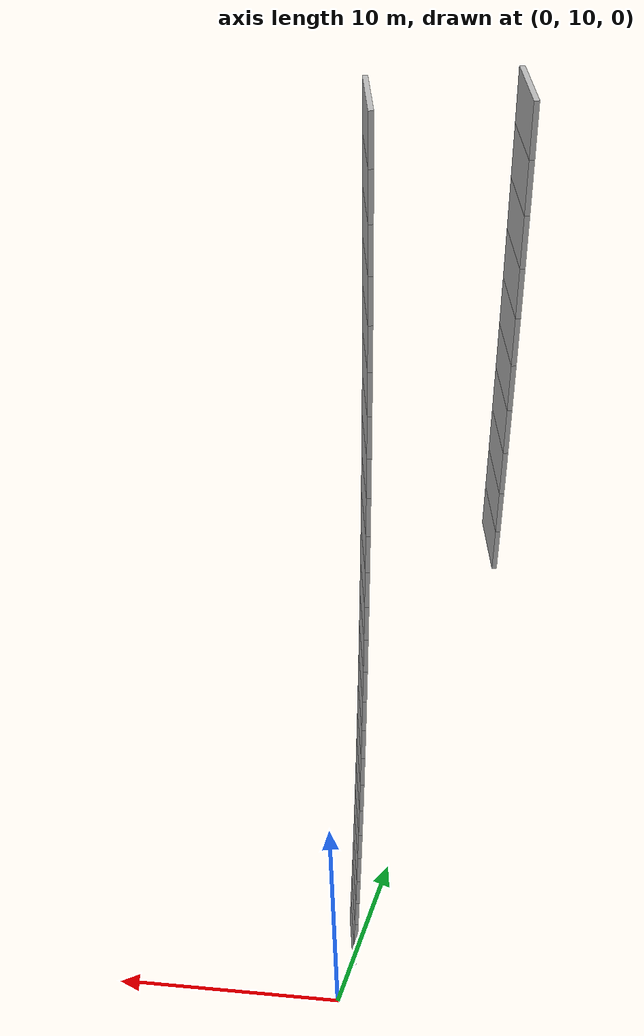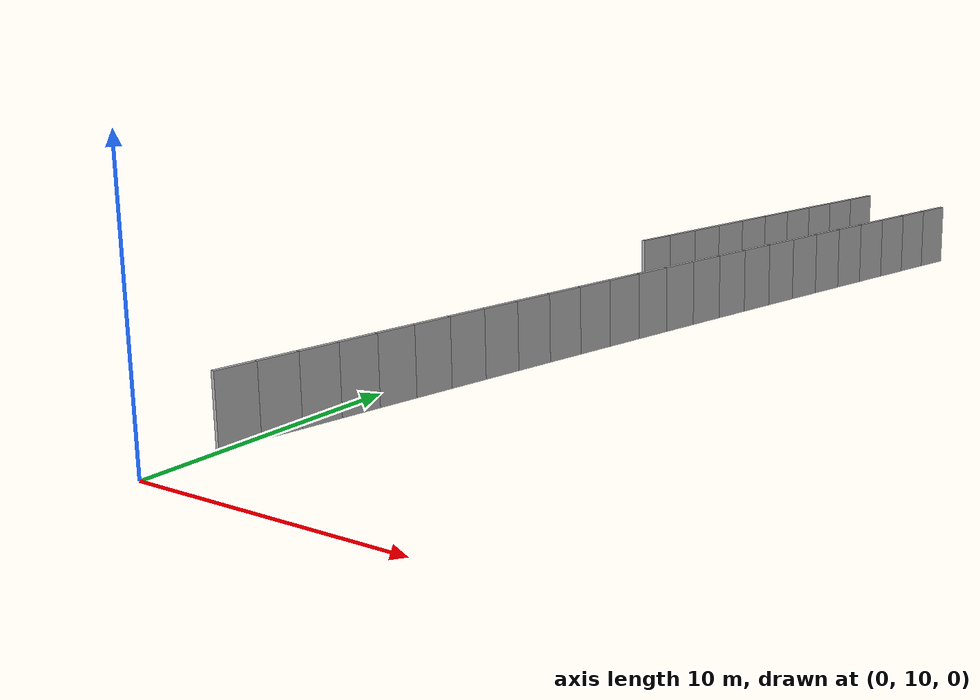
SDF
<?xml version="1.0" ?>
<sdf version="1.6">
  <model name="sps_0329">
    <pose frame="">0 0 0 0 -0 0</pose>
    <static>1</static>
    <self_collide>0</self_collide>
    <allow_auto_disable>0</allow_auto_disable>
    <link name="Wall5069">
      <kinematic>0</kinematic>
      <gravity>1</gravity>
      <self_collide>0</self_collide>
      <collision name="collision">
        <geometry>
          <box>
            <size>1.4965 0.15 2.5</size>
          </box>
        </geometry>
        <pose frame="">0 0 0 0 -0 0</pose>
      </collision>
      <visual name="visual">
        <geometry>
          <box>
            <size>1.4965 0.15 2.5</size>
          </box>
        </geometry>
        <pose frame="">0 0 0 0 -0 0</pose>
        <cast_shadows>1</cast_shadows>
        <transparency>0.0</transparency>
      </visual>
      <pose frame="">7.18984 48.9115 1.25 0 0 -1.79093</pose>
    </link>
    <link name="Wall5070">
      <kinematic>0</kinematic>
      <gravity>1</gravity>
      <self_collide>0</self_collide>
      <collision name="collision">
        <geometry>
          <box>
            <size>1.49658 0.15 2.5</size>
          </box>
        </geometry>
        <pose frame="">0 0 0 0 -0 0</pose>
      </collision>
      <visual name="visual">
        <geometry>
          <box>
            <size>1.49658 0.15 2.5</size>
          </box>
        </geometry>
        <pose frame="">0 0 0 0 -0 0</pose>
        <cast_shadows>1</cast_shadows>
        <transparency>0.0</transparency>
      </visual>
      <pose frame="">6.86425 47.4508 1.25 0 0 -1.78929</pose>
    </link>
    <link name="Wall5071">
      <kinematic>0</kinematic>
      <gravity>1</gravity>
      <self_collide>0</self_collide>
      <collision name="collision">
        <geometry>
          <box>
            <size>1.49648 0.15 2.5</size>
          </box>
        </geometry>
        <pose frame="">0 0 0 0 -0 0</pose>
      </collision>
      <visual name="visual">
        <geometry>
          <box>
            <size>1.49648 0.15 2.5</size>
          </box>
        </geometry>
        <pose frame="">0 0 0 0 -0 0</pose>
        <cast_shadows>1</cast_shadows>
        <transparency>0.0</transparency>
      </visual>
      <pose frame="">6.54104 45.9896 1.25 0 0 -1.78768</pose>
    </link>
    <link name="Wall5072">
      <kinematic>0</kinematic>
      <gravity>1</gravity>
      <self_collide>0</self_collide>
      <collision name="collision">
        <geometry>
          <box>
            <size>1.49654 0.15 2.5</size>
          </box>
        </geometry>
        <pose frame="">0 0 0 0 -0 0</pose>
      </collision>
      <visual name="visual">
        <geometry>
          <box>
            <size>1.49654 0.15 2.5</size>
          </box>
        </geometry>
        <pose frame="">0 0 0 0 -0 0</pose>
        <cast_shadows>1</cast_shadows>
        <transparency>0.0</transparency>
      </visual>
      <pose frame="">6.22015 44.5279 1.25 0 0 -1.78613</pose>
    </link>
    <link name="Wall5073">
      <kinematic>0</kinematic>
      <gravity>1</gravity>
      <self_collide>0</self_collide>
      <collision name="collision">
        <geometry>
          <box>
            <size>1.4965 0.15 2.5</size>
          </box>
        </geometry>
        <pose frame="">0 0 0 0 -0 0</pose>
      </collision>
      <visual name="visual">
        <geometry>
          <box>
            <size>1.4965 0.15 2.5</size>
          </box>
        </geometry>
        <pose frame="">0 0 0 0 -0 0</pose>
        <cast_shadows>1</cast_shadows>
        <transparency>0.0</transparency>
      </visual>
      <pose frame="">5.90145 43.0657 1.25 0 0 -1.78467</pose>
    </link>
    <link name="Wall5074">
      <kinematic>0</kinematic>
      <gravity>1</gravity>
      <self_collide>0</self_collide>
      <collision name="collision">
        <geometry>
          <box>
            <size>1.49654 0.15 2.5</size>
          </box>
        </geometry>
        <pose frame="">0 0 0 0 -0 0</pose>
      </collision>
      <visual name="visual">
        <geometry>
          <box>
            <size>1.49654 0.15 2.5</size>
          </box>
        </geometry>
        <pose frame="">0 0 0 0 -0 0</pose>
        <cast_shadows>1</cast_shadows>
        <transparency>0.0</transparency>
      </visual>
      <pose frame="">5.58514 41.603 1.25 0 0 -1.78287</pose>
    </link>
    <link name="Wall5075">
      <kinematic>0</kinematic>
      <gravity>1</gravity>
      <self_collide>0</self_collide>
      <collision name="collision">
        <geometry>
          <box>
            <size>1.49639 0.15 2.5</size>
          </box>
        </geometry>
        <pose frame="">0 0 0 0 -0 0</pose>
      </collision>
      <visual name="visual">
        <geometry>
          <box>
            <size>1.49639 0.15 2.5</size>
          </box>
        </geometry>
        <pose frame="">0 0 0 0 -0 0</pose>
        <cast_shadows>1</cast_shadows>
        <transparency>0.0</transparency>
      </visual>
      <pose frame="">5.27135 40.1398 1.25 0 0 -1.78122</pose>
    </link>
    <link name="Wall5076">
      <kinematic>0</kinematic>
      <gravity>1</gravity>
      <self_collide>0</self_collide>
      <collision name="collision">
        <geometry>
          <box>
            <size>1.49654 0.15 2.5</size>
          </box>
        </geometry>
        <pose frame="">0 0 0 0 -0 0</pose>
      </collision>
      <visual name="visual">
        <geometry>
          <box>
            <size>1.49654 0.15 2.5</size>
          </box>
        </geometry>
        <pose frame="">0 0 0 0 -0 0</pose>
        <cast_shadows>1</cast_shadows>
        <transparency>0.0</transparency>
      </visual>
      <pose frame="">4.95986 38.6761 1.25 0 0 -1.77974</pose>
    </link>
    <link name="Wall5077">
      <kinematic>0</kinematic>
      <gravity>1</gravity>
      <self_collide>0</self_collide>
      <collision name="collision">
        <geometry>
          <box>
            <size>1.49649 0.15 2.5</size>
          </box>
        </geometry>
        <pose frame="">0 0 0 0 -0 0</pose>
      </collision>
      <visual name="visual">
        <geometry>
          <box>
            <size>1.49649 0.15 2.5</size>
          </box>
        </geometry>
        <pose frame="">0 0 0 0 -0 0</pose>
        <cast_shadows>1</cast_shadows>
        <transparency>0.0</transparency>
      </visual>
      <pose frame="">4.65057 37.2119 1.25 0 0 -1.77821</pose>
    </link>
    <link name="Wall5078">
      <kinematic>0</kinematic>
      <gravity>1</gravity>
      <self_collide>0</self_collide>
      <collision name="collision">
        <geometry>
          <box>
            <size>1.49637 0.15 2.5</size>
          </box>
        </geometry>
        <pose frame="">0 0 0 0 -0 0</pose>
      </collision>
      <visual name="visual">
        <geometry>
          <box>
            <size>1.49637 0.15 2.5</size>
          </box>
        </geometry>
        <pose frame="">0 0 0 0 -0 0</pose>
        <cast_shadows>1</cast_shadows>
        <transparency>0.0</transparency>
      </visual>
      <pose frame="">4.34356 35.7473 1.25 0 0 -1.77664</pose>
    </link>
    <link name="Wall5079">
      <kinematic>0</kinematic>
      <gravity>1</gravity>
      <self_collide>0</self_collide>
      <collision name="collision">
        <geometry>
          <box>
            <size>1.49675 0.15 2.5</size>
          </box>
        </geometry>
        <pose frame="">0 0 0 0 -0 0</pose>
      </collision>
      <visual name="visual">
        <geometry>
          <box>
            <size>1.49675 0.15 2.5</size>
          </box>
        </geometry>
        <pose frame="">0 0 0 0 -0 0</pose>
        <cast_shadows>1</cast_shadows>
        <transparency>0.0</transparency>
      </visual>
      <pose frame="">4.03884 34.2821 1.25 0 0 -1.77505</pose>
    </link>
    <link name="Wall5080">
      <kinematic>0</kinematic>
      <gravity>1</gravity>
      <self_collide>0</self_collide>
      <collision name="collision">
        <geometry>
          <box>
            <size>1.49639 0.15 2.5</size>
          </box>
        </geometry>
        <pose frame="">0 0 0 0 -0 0</pose>
      </collision>
      <visual name="visual">
        <geometry>
          <box>
            <size>1.49639 0.15 2.5</size>
          </box>
        </geometry>
        <pose frame="">0 0 0 0 -0 0</pose>
        <cast_shadows>1</cast_shadows>
        <transparency>0.0</transparency>
      </visual>
      <pose frame="">3.73644 32.8164 1.25 0 0 -1.77347</pose>
    </link>
    <link name="Wall5081">
      <kinematic>0</kinematic>
      <gravity>1</gravity>
      <self_collide>0</self_collide>
      <collision name="collision">
        <geometry>
          <box>
            <size>1.49656 0.15 2.5</size>
          </box>
        </geometry>
        <pose frame="">0 0 0 0 -0 0</pose>
      </collision>
      <visual name="visual">
        <geometry>
          <box>
            <size>1.49656 0.15 2.5</size>
          </box>
        </geometry>
        <pose frame="">0 0 0 0 -0 0</pose>
        <cast_shadows>1</cast_shadows>
        <transparency>0.0</transparency>
      </visual>
      <pose frame="">3.43645 31.3503 1.25 0 0 -1.77178</pose>
    </link>
    <link name="Wall5082">
      <kinematic>0</kinematic>
      <gravity>1</gravity>
      <self_collide>0</self_collide>
      <collision name="collision">
        <geometry>
          <box>
            <size>1.49649 0.15 2.5</size>
          </box>
        </geometry>
        <pose frame="">0 0 0 0 -0 0</pose>
      </collision>
      <visual name="visual">
        <geometry>
          <box>
            <size>1.49649 0.15 2.5</size>
          </box>
        </geometry>
        <pose frame="">0 0 0 0 -0 0</pose>
        <cast_shadows>1</cast_shadows>
        <transparency>0.0</transparency>
      </visual>
      <pose frame="">3.13876 29.8837 1.25 0 0 -1.77034</pose>
    </link>
    <link name="Wall5083">
      <kinematic>0</kinematic>
      <gravity>1</gravity>
      <self_collide>0</self_collide>
      <collision name="collision">
        <geometry>
          <box>
            <size>1.49661 0.15 2.5</size>
          </box>
        </geometry>
        <pose frame="">0 0 0 0 -0 0</pose>
      </collision>
      <visual name="visual">
        <geometry>
          <box>
            <size>1.49661 0.15 2.5</size>
          </box>
        </geometry>
        <pose frame="">0 0 0 0 -0 0</pose>
        <cast_shadows>1</cast_shadows>
        <transparency>0.0</transparency>
      </visual>
      <pose frame="">2.84334 28.4166 1.25 0 0 -1.76866</pose>
    </link>
    <link name="Wall5084">
      <kinematic>0</kinematic>
      <gravity>1</gravity>
      <self_collide>0</self_collide>
      <collision name="collision">
        <geometry>
          <box>
            <size>1.4965 0.15 2.5</size>
          </box>
        </geometry>
        <pose frame="">0 0 0 0 -0 0</pose>
      </collision>
      <visual name="visual">
        <geometry>
          <box>
            <size>1.4965 0.15 2.5</size>
          </box>
        </geometry>
        <pose frame="">0 0 0 0 -0 0</pose>
        <cast_shadows>1</cast_shadows>
        <transparency>0.0</transparency>
      </visual>
      <pose frame="">2.55035 26.949 1.25 0 0 -1.76705</pose>
    </link>
    <link name="Wall5085">
      <kinematic>0</kinematic>
      <gravity>1</gravity>
      <self_collide>0</self_collide>
      <collision name="collision">
        <geometry>
          <box>
            <size>1.49649 0.15 2.5</size>
          </box>
        </geometry>
        <pose frame="">0 0 0 0 -0 0</pose>
      </collision>
      <visual name="visual">
        <geometry>
          <box>
            <size>1.49649 0.15 2.5</size>
          </box>
        </geometry>
        <pose frame="">0 0 0 0 -0 0</pose>
        <cast_shadows>1</cast_shadows>
        <transparency>0.0</transparency>
      </visual>
      <pose frame="">2.25964 25.481 1.25 0 0 -1.76555</pose>
    </link>
    <link name="Wall5086">
      <kinematic>0</kinematic>
      <gravity>1</gravity>
      <self_collide>0</self_collide>
      <collision name="collision">
        <geometry>
          <box>
            <size>1.49662 0.15 2.5</size>
          </box>
        </geometry>
        <pose frame="">0 0 0 0 -0 0</pose>
      </collision>
      <visual name="visual">
        <geometry>
          <box>
            <size>1.49662 0.15 2.5</size>
          </box>
        </geometry>
        <pose frame="">0 0 0 0 -0 0</pose>
        <cast_shadows>1</cast_shadows>
        <transparency>0.0</transparency>
      </visual>
      <pose frame="">1.97124 24.0125 1.25 0 0 -1.76387</pose>
    </link>
    <link name="Wall5087">
      <kinematic>0</kinematic>
      <gravity>1</gravity>
      <self_collide>0</self_collide>
      <collision name="collision">
        <geometry>
          <box>
            <size>1.49635 0.15 2.5</size>
          </box>
        </geometry>
        <pose frame="">0 0 0 0 -0 0</pose>
      </collision>
      <visual name="visual">
        <geometry>
          <box>
            <size>1.49635 0.15 2.5</size>
          </box>
        </geometry>
        <pose frame="">0 0 0 0 -0 0</pose>
        <cast_shadows>1</cast_shadows>
        <transparency>0.0</transparency>
      </visual>
      <pose frame="">1.68526 22.5436 1.25 0 0 -1.76229</pose>
    </link>
    <link name="Wall5088">
      <kinematic>0</kinematic>
      <gravity>1</gravity>
      <self_collide>0</self_collide>
      <collision name="collision">
        <geometry>
          <box>
            <size>1.49653 0.15 2.5</size>
          </box>
        </geometry>
        <pose frame="">0 0 0 0 -0 0</pose>
      </collision>
      <visual name="visual">
        <geometry>
          <box>
            <size>1.49653 0.15 2.5</size>
          </box>
        </geometry>
        <pose frame="">0 0 0 0 -0 0</pose>
        <cast_shadows>1</cast_shadows>
        <transparency>0.0</transparency>
      </visual>
      <pose frame="">1.40157 21.0743 1.25 0 0 -1.76077</pose>
    </link>
    <link name="Wall5089">
      <kinematic>0</kinematic>
      <gravity>1</gravity>
      <self_collide>0</self_collide>
      <collision name="collision">
        <geometry>
          <box>
            <size>1.49668 0.15 2.5</size>
          </box>
        </geometry>
        <pose frame="">0 0 0 0 -0 0</pose>
      </collision>
      <visual name="visual">
        <geometry>
          <box>
            <size>1.49668 0.15 2.5</size>
          </box>
        </geometry>
        <pose frame="">0 0 0 0 -0 0</pose>
        <cast_shadows>1</cast_shadows>
        <transparency>0.0</transparency>
      </visual>
      <pose frame="">1.12017 19.6044 1.25 0 0 -1.75913</pose>
    </link>
    <link name="Wall5090">
      <kinematic>0</kinematic>
      <gravity>1</gravity>
      <self_collide>0</self_collide>
      <collision name="collision">
        <geometry>
          <box>
            <size>1.49645 0.15 2.5</size>
          </box>
        </geometry>
        <pose frame="">0 0 0 0 -0 0</pose>
      </collision>
      <visual name="visual">
        <geometry>
          <box>
            <size>1.49645 0.15 2.5</size>
          </box>
        </geometry>
        <pose frame="">0 0 0 0 -0 0</pose>
        <cast_shadows>1</cast_shadows>
        <transparency>0.0</transparency>
      </visual>
      <pose frame="">0.841056 18.1341 1.25 0 0 -1.75767</pose>
    </link>
    <link name="Wall5091">
      <kinematic>0</kinematic>
      <gravity>1</gravity>
      <self_collide>0</self_collide>
      <collision name="collision">
        <geometry>
          <box>
            <size>1.4966 0.15 2.5</size>
          </box>
        </geometry>
        <pose frame="">0 0 0 0 -0 0</pose>
      </collision>
      <visual name="visual">
        <geometry>
          <box>
            <size>1.4966 0.15 2.5</size>
          </box>
        </geometry>
        <pose frame="">0 0 0 0 -0 0</pose>
        <cast_shadows>1</cast_shadows>
        <transparency>0.0</transparency>
      </visual>
      <pose frame="">0.564262 16.6634 1.25 0 0 -1.75599</pose>
    </link>
    <link name="Wall5092">
      <kinematic>0</kinematic>
      <gravity>1</gravity>
      <self_collide>0</self_collide>
      <collision name="collision">
        <geometry>
          <box>
            <size>1.49634 0.15 2.5</size>
          </box>
        </geometry>
        <pose frame="">0 0 0 0 -0 0</pose>
      </collision>
      <visual name="visual">
        <geometry>
          <box>
            <size>1.49634 0.15 2.5</size>
          </box>
        </geometry>
        <pose frame="">0 0 0 0 -0 0</pose>
        <cast_shadows>1</cast_shadows>
        <transparency>0.0</transparency>
      </visual>
      <pose frame="">0.289878 15.1923 1.25 0 0 -1.7544</pose>
    </link>
    <link name="Wall5093">
      <kinematic>0</kinematic>
      <gravity>1</gravity>
      <self_collide>0</self_collide>
      <collision name="collision">
        <geometry>
          <box>
            <size>1.49654 0.15 2.5</size>
          </box>
        </geometry>
        <pose frame="">0 0 0 0 -0 0</pose>
      </collision>
      <visual name="visual">
        <geometry>
          <box>
            <size>1.49654 0.15 2.5</size>
          </box>
        </geometry>
        <pose frame="">0 0 0 0 -0 0</pose>
        <cast_shadows>1</cast_shadows>
        <transparency>0.0</transparency>
      </visual>
      <pose frame="">0.0177834 13.7208 1.25 0 0 -1.75288</pose>
    </link>
    <link name="Wall6865">
      <kinematic>0</kinematic>
      <gravity>1</gravity>
      <self_collide>0</self_collide>
      <collision name="collision">
        <geometry>
          <box>
            <size>1.50284 0.15 2.5</size>
          </box>
        </geometry>
        <pose frame="">0 0 0 0 -0 0</pose>
      </collision>
      <visual name="visual">
        <geometry>
          <box>
            <size>1.50284 0.15 2.5</size>
          </box>
        </geometry>
        <pose frame="">0 0 0 0 -0 0</pose>
        <cast_shadows>1</cast_shadows>
        <transparency>0.0</transparency>
      </visual>
      <pose frame="">3.15023 49.8152 1.25 0 0 -1.79082</pose>
    </link>
    <link name="Wall6866">
      <kinematic>0</kinematic>
      <gravity>1</gravity>
      <self_collide>0</self_collide>
      <collision name="collision">
        <geometry>
          <box>
            <size>1.50307 0.15 2.5</size>
          </box>
        </geometry>
        <pose frame="">0 0 0 0 -0 0</pose>
      </collision>
      <visual name="visual">
        <geometry>
          <box>
            <size>1.50307 0.15 2.5</size>
          </box>
        </geometry>
        <pose frame="">0 0 0 0 -0 0</pose>
        <cast_shadows>1</cast_shadows>
        <transparency>0.0</transparency>
      </visual>
      <pose frame="">2.82336 48.3482 1.25 0 0 -1.78925</pose>
    </link>
    <link name="Wall6867">
      <kinematic>0</kinematic>
      <gravity>1</gravity>
      <self_collide>0</self_collide>
      <collision name="collision">
        <geometry>
          <box>
            <size>1.50304 0.15 2.5</size>
          </box>
        </geometry>
        <pose frame="">0 0 0 0 -0 0</pose>
      </collision>
      <visual name="visual">
        <geometry>
          <box>
            <size>1.50304 0.15 2.5</size>
          </box>
        </geometry>
        <pose frame="">0 0 0 0 -0 0</pose>
        <cast_shadows>1</cast_shadows>
        <transparency>0.0</transparency>
      </visual>
      <pose frame="">2.49877 46.8806 1.25 0 0 -1.78767</pose>
    </link>
    <link name="Wall6868">
      <kinematic>0</kinematic>
      <gravity>1</gravity>
      <self_collide>0</self_collide>
      <collision name="collision">
        <geometry>
          <box>
            <size>1.50311 0.15 2.5</size>
          </box>
        </geometry>
        <pose frame="">0 0 0 0 -0 0</pose>
      </collision>
      <visual name="visual">
        <geometry>
          <box>
            <size>1.50311 0.15 2.5</size>
          </box>
        </geometry>
        <pose frame="">0 0 0 0 -0 0</pose>
        <cast_shadows>1</cast_shadows>
        <transparency>0.0</transparency>
      </visual>
      <pose frame="">2.17644 45.4125 1.25 0 0 -1.78617</pose>
    </link>
    <link name="Wall6869">
      <kinematic>0</kinematic>
      <gravity>1</gravity>
      <self_collide>0</self_collide>
      <collision name="collision">
        <geometry>
          <box>
            <size>1.50319 0.15 2.5</size>
          </box>
        </geometry>
        <pose frame="">0 0 0 0 -0 0</pose>
      </collision>
      <visual name="visual">
        <geometry>
          <box>
            <size>1.50319 0.15 2.5</size>
          </box>
        </geometry>
        <pose frame="">0 0 0 0 -0 0</pose>
        <cast_shadows>1</cast_shadows>
        <transparency>0.0</transparency>
      </visual>
      <pose frame="">1.85644 43.9438 1.25 0 0 -1.78449</pose>
    </link>
    <link name="Wall6870">
      <kinematic>0</kinematic>
      <gravity>1</gravity>
      <self_collide>0</self_collide>
      <collision name="collision">
        <geometry>
          <box>
            <size>1.5031 0.15 2.5</size>
          </box>
        </geometry>
        <pose frame="">0 0 0 0 -0 0</pose>
      </collision>
      <visual name="visual">
        <geometry>
          <box>
            <size>1.5031 0.15 2.5</size>
          </box>
        </geometry>
        <pose frame="">0 0 0 0 -0 0</pose>
        <cast_shadows>1</cast_shadows>
        <transparency>0.0</transparency>
      </visual>
      <pose frame="">1.53884 42.4746 1.25 0 0 -1.78289</pose>
    </link>
    <link name="Wall6871">
      <kinematic>0</kinematic>
      <gravity>1</gravity>
      <self_collide>0</self_collide>
      <collision name="collision">
        <geometry>
          <box>
            <size>1.503 0.15 2.5</size>
          </box>
        </geometry>
        <pose frame="">0 0 0 0 -0 0</pose>
      </collision>
      <visual name="visual">
        <geometry>
          <box>
            <size>1.503 0.15 2.5</size>
          </box>
        </geometry>
        <pose frame="">0 0 0 0 -0 0</pose>
        <cast_shadows>1</cast_shadows>
        <transparency>0.0</transparency>
      </visual>
      <pose frame="">1.22353 41.005 1.25 0 0 -1.7814</pose>
    </link>
    <link name="Wall6872">
      <kinematic>0</kinematic>
      <gravity>1</gravity>
      <self_collide>0</self_collide>
      <collision name="collision">
        <geometry>
          <box>
            <size>1.50309 0.15 2.5</size>
          </box>
        </geometry>
        <pose frame="">0 0 0 0 -0 0</pose>
      </collision>
      <visual name="visual">
        <geometry>
          <box>
            <size>1.50309 0.15 2.5</size>
          </box>
        </geometry>
        <pose frame="">0 0 0 0 -0 0</pose>
        <cast_shadows>1</cast_shadows>
        <transparency>0.0</transparency>
      </visual>
      <pose frame="">0.910545 39.5349 1.25 0 0 -1.77973</pose>
    </link>
    <link name="Wall6873">
      <kinematic>0</kinematic>
      <gravity>1</gravity>
      <self_collide>0</self_collide>
      <collision name="collision">
        <geometry>
          <box>
            <size>1.50306 0.15 2.5</size>
          </box>
        </geometry>
        <pose frame="">0 0 0 0 -0 0</pose>
      </collision>
      <visual name="visual">
        <geometry>
          <box>
            <size>1.50306 0.15 2.5</size>
          </box>
        </geometry>
        <pose frame="">0 0 0 0 -0 0</pose>
        <cast_shadows>1</cast_shadows>
        <transparency>0.0</transparency>
      </visual>
      <pose frame="">0.599845 38.0643 1.25 0 0 -1.77828</pose>
    </link>
    <link name="Wall6874">
      <kinematic>0</kinematic>
      <gravity>1</gravity>
      <self_collide>0</self_collide>
      <collision name="collision">
        <geometry>
          <box>
            <size>1.5031 0.15 2.5</size>
          </box>
        </geometry>
        <pose frame="">0 0 0 0 -0 0</pose>
      </collision>
      <visual name="visual">
        <geometry>
          <box>
            <size>1.5031 0.15 2.5</size>
          </box>
        </geometry>
        <pose frame="">0 0 0 0 -0 0</pose>
        <cast_shadows>1</cast_shadows>
        <transparency>0.0</transparency>
      </visual>
      <pose frame="">0.291435 36.5932 1.25 0 0 -1.77662</pose>
    </link>
  </model>
</sdf>
